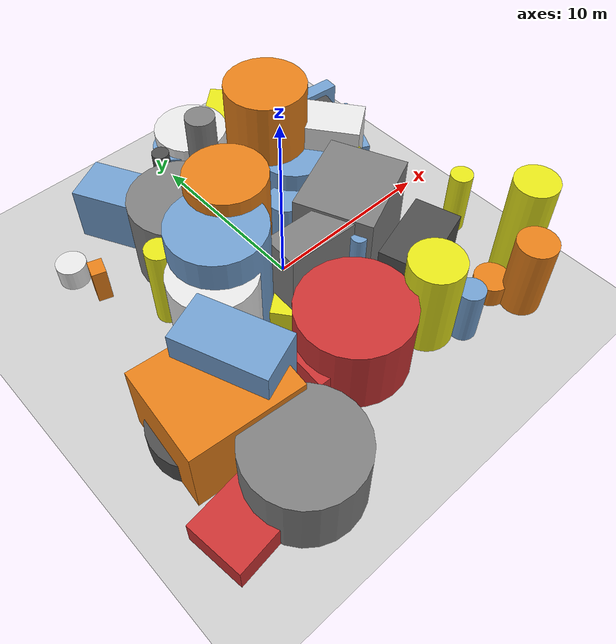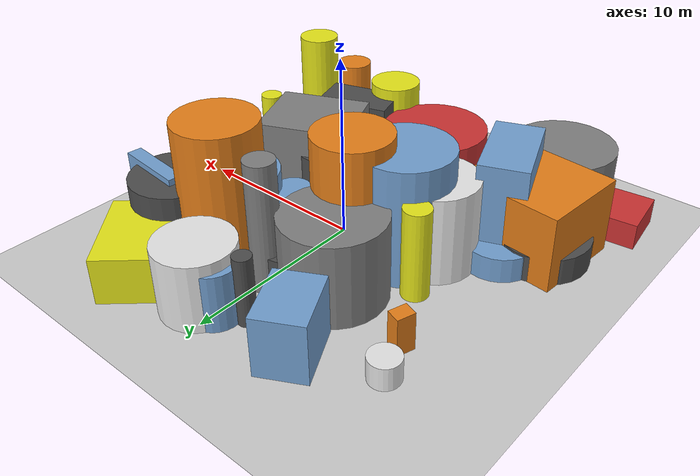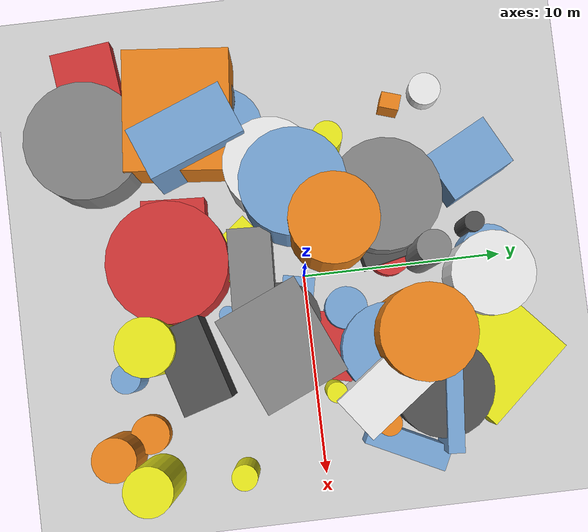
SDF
<?xml version='1.0'?>
<sdf version='1.6'>
  <world name='default'>
    <!-- Sun light -->
    <light name='sun' type='directional'>
      <cast_shadows>1</cast_shadows>
      <pose>0 0 10 0 0 0</pose>
      <diffuse>0.8 0.8 0.8 1</diffuse>
      <specular>0.2 0.2 0.2 1</specular>
      <attenuation>
        <range>1000</range>
        <constant>0.9</constant>
        <linear>0.01</linear>
        <quadratic>0.001</quadratic>
      </attenuation>
      <direction>-0.5 0.1 -0.9</direction>
    </light>

    <!-- Ground plane -->
    <model name='ground_plane'>
      <static>1</static>
      <link name='link'>
        <collision name='collision'>
          <geometry>
            <plane>
              <normal>0 0 1</normal>
              <size>100 100</size>
            </plane>
          </geometry>
          <surface>
            <contact>
              <collide_bitmask>65535</collide_bitmask>
              <ode/>
            </contact>
            <friction>
              <ode>
                <mu>100</mu>
                <mu2>50</mu2>
              </ode>
              <torsional><ode/></torsional>
            </friction>
            <bounce/>
          </surface>
          <max_contacts>10</max_contacts>
        </collision>
        <visual name='visual'>
          <cast_shadows>0</cast_shadows>
          <geometry>
            <plane>
              <normal>0 0 1</normal>
              <size>100 100</size>
            </plane>
          </geometry>
          <material>
            <script>
              <uri>file://media/materials/scripts/gazebo.material</uri>
              <n>Gazebo/Grey</n>
            </script>
          </material>
        </visual>
      </link>
    </model>

    <!-- Environment -->
    <magnetic_field>6e-06 2.3e-05 -4.2e-05</magnetic_field>
    <atmosphere type='adiabatic'/>
    <physics name='default_physics' default='0' type='ode'>
      <gravity>0 0 -9.8</gravity>
      <max_step_size>0.004</max_step_size>
      <real_time_factor>1</real_time_factor>
      <real_time_update_rate>250</real_time_update_rate>
    </physics>
    <scene>
      <ambient>0.4 0.4 0.4 1</ambient>
      <background>0.7 0.7 0.7 1</background>
      <shadows>1</shadows>
    </scene>
    <wind/>
    <spherical_coordinates>
      <surface_model>EARTH_WGS84</surface_model>
      <latitude_deg>0</latitude_deg>
      <longitude_deg>0</longitude_deg>
      <elevation>0</elevation>
      <heading_deg>0</heading_deg>
    </spherical_coordinates>

    <!-- ============ OBSTACLES (49) ============ -->
    <model name='obs_00'>
      <static>1</static>
      <link name='link'>
        <visual name='visual'>
          <geometry>
            <cylinder>
              <radius>0.9674</radius>
              <length>1.2553</length>
            </cylinder>
          </geometry>
          <material>
            <script>
              <n>Gazebo/Orange</n>
              <uri>file://media/materials/scripts/gazebo.material</uri>
            </script>
            <ambient>0.9 0.5 0.1 1</ambient>
          </material>
        </visual>
        <collision name='collision'>
          <geometry>
            <cylinder>
              <radius>0.9674</radius>
              <length>1.2553</length>
            </cylinder>
          </geometry>
          <max_contacts>10</max_contacts>
          <surface>
            <contact><ode/></contact>
            <bounce/>
            <friction>
              <ode><mu>1</mu><mu2>1</mu2></ode>
              <torsional><ode/></torsional>
            </friction>
          </surface>
        </collision>
      </link>
      <pose>7.0112 -8.4741 0.6277 0 0 0.6024</pose>
    </model>

    <model name='obs_01'>
      <static>1</static>
      <link name='link'>
        <visual name='visual'>
          <geometry>
            <cylinder>
              <radius>0.7028</radius>
              <length>1.4837</length>
            </cylinder>
          </geometry>
          <material>
            <script>
              <n>Gazebo/Yellow</n>
              <uri>file://media/materials/scripts/gazebo.material</uri>
            </script>
            <ambient>0.9 0.9 0.1 1</ambient>
          </material>
        </visual>
        <collision name='collision'>
          <geometry>
            <cylinder>
              <radius>0.7028</radius>
              <length>1.4837</length>
            </cylinder>
          </geometry>
          <max_contacts>10</max_contacts>
          <surface>
            <contact><ode/></contact>
            <bounce/>
            <friction>
              <ode><mu>1</mu><mu2>1</mu2></ode>
              <torsional><ode/></torsional>
            </friction>
          </surface>
        </collision>
      </link>
      <pose>-3.0285 3.0110 0.7419 0 0 3.1001</pose>
    </model>

    <model name='obs_02'>
      <static>1</static>
      <link name='link'>
        <visual name='visual'>
          <geometry>
            <cylinder>
              <radius>0.7253</radius>
              <length>4.9550</length>
            </cylinder>
          </geometry>
          <material>
            <script>
              <n>Gazebo/Yellow</n>
              <uri>file://media/materials/scripts/gazebo.material</uri>
            </script>
            <ambient>0.9 0.9 0.1 1</ambient>
          </material>
        </visual>
        <collision name='collision'>
          <geometry>
            <cylinder>
              <radius>0.7253</radius>
              <length>4.9550</length>
            </cylinder>
          </geometry>
          <max_contacts>10</max_contacts>
          <surface>
            <contact><ode/></contact>
            <bounce/>
            <friction>
              <ode><mu>1</mu><mu2>1</mu2></ode>
              <torsional><ode/></torsional>
            </friction>
          </surface>
        </collision>
      </link>
      <pose>-6.1950 1.7895 2.4775 0 0 0.3175</pose>
    </model>

    <model name='obs_03'>
      <static>1</static>
      <link name='link'>
        <visual name='visual'>
          <geometry>
            <cylinder>
              <radius>0.7131</radius>
              <length>1.6306</length>
            </cylinder>
          </geometry>
          <material>
            <script>
              <n>Gazebo/DarkGrey</n>
              <uri>file://media/materials/scripts/gazebo.material</uri>
            </script>
            <ambient>0.3 0.3 0.3 1</ambient>
          </material>
        </visual>
        <collision name='collision'>
          <geometry>
            <cylinder>
              <radius>0.7131</radius>
              <length>1.6306</length>
            </cylinder>
          </geometry>
          <max_contacts>10</max_contacts>
          <surface>
            <contact><ode/></contact>
            <bounce/>
            <friction>
              <ode><mu>1</mu><mu2>1</mu2></ode>
              <torsional><ode/></torsional>
            </friction>
          </surface>
        </collision>
      </link>
      <pose>-4.5865 2.9337 0.8153 0 0 2.9476</pose>
    </model>

    <model name='obs_04'>
      <static>1</static>
      <link name='link'>
        <visual name='visual'>
          <geometry>
            <cylinder>
              <radius>2.1077</radius>
              <length>7.3682</length>
            </cylinder>
          </geometry>
          <material>
            <script>
              <n>Gazebo/Orange</n>
              <uri>file://media/materials/scripts/gazebo.material</uri>
            </script>
            <ambient>0.9 0.5 0.1 1</ambient>
          </material>
        </visual>
        <collision name='collision'>
          <geometry>
            <cylinder>
              <radius>2.1077</radius>
              <length>7.3682</length>
            </cylinder>
          </geometry>
          <max_contacts>10</max_contacts>
          <surface>
            <contact><ode/></contact>
            <bounce/>
            <friction>
              <ode><mu>1</mu><mu2>1</mu2></ode>
              <torsional><ode/></torsional>
            </friction>
          </surface>
        </collision>
      </link>
      <pose>-2.0903 1.5663 3.6841 0 0 3.0534</pose>
    </model>

    <model name='obs_05'>
      <static>1</static>
      <link name='link'>
        <visual name='visual'>
          <geometry>
            <box>
              <size>5.4798 5.1498 2.5641</size>
            </box>
          </geometry>
          <material>
            <script>
              <n>Gazebo/Yellow</n>
              <uri>file://media/materials/scripts/gazebo.material</uri>
            </script>
            <ambient>0.9 0.9 0.1 1</ambient>
          </material>
        </visual>
        <collision name='collision'>
          <geometry>
            <box>
              <size>5.4798 5.1498 2.5641</size>
            </box>
          </geometry>
          <max_contacts>10</max_contacts>
          <surface>
            <contact><ode/></contact>
            <bounce/>
            <friction>
              <ode><mu>1</mu><mu2>1</mu2></ode>
              <torsional><ode/></torsional>
            </friction>
          </surface>
        </collision>
      </link>
      <pose>4.6281 8.5298 1.2821 0 0 0.7285</pose>
    </model>

    <model name='obs_06'>
      <static>1</static>
      <link name='link'>
        <visual name='visual'>
          <geometry>
            <box>
              <size>3.4422 2.5939 3.2309</size>
            </box>
          </geometry>
          <material>
            <script>
              <n>Gazebo/Blue</n>
              <uri>file://media/materials/scripts/gazebo.material</uri>
            </script>
            <ambient>0.447 0.624 0.812 1</ambient>
          </material>
        </visual>
        <collision name='collision'>
          <geometry>
            <box>
              <size>3.4422 2.5939 3.2309</size>
            </box>
          </geometry>
          <max_contacts>10</max_contacts>
          <surface>
            <contact><ode/></contact>
            <bounce/>
            <friction>
              <ode><mu>1</mu><mu2>1</mu2></ode>
              <torsional><ode/></torsional>
            </friction>
          </surface>
        </collision>
      </link>
      <pose>-4.5895 8.5874 1.6154 0 0 2.0553</pose>
    </model>

    <model name='obs_07'>
      <static>1</static>
      <link name='link'>
        <visual name='visual'>
          <geometry>
            <box>
              <size>1.8927 0.7766 4.0452</size>
            </box>
          </geometry>
          <material>
            <script>
              <n>Gazebo/Blue</n>
              <uri>file://media/materials/scripts/gazebo.material</uri>
            </script>
            <ambient>0.447 0.624 0.812 1</ambient>
          </material>
        </visual>
        <collision name='collision'>
          <geometry>
            <box>
              <size>1.8927 0.7766 4.0452</size>
            </box>
          </geometry>
          <max_contacts>10</max_contacts>
          <surface>
            <contact><ode/></contact>
            <bounce/>
            <friction>
              <ode><mu>1</mu><mu2>1</mu2></ode>
              <torsional><ode/></torsional>
            </friction>
          </surface>
        </collision>
      </link>
      <pose>-3.6639 1.3154 2.0226 0 0 0.6237</pose>
    </model>

    <model name='obs_08'>
      <static>1</static>
      <link name='link'>
        <visual name='visual'>
          <geometry>
            <cylinder>
              <radius>2.5033</radius>
              <length>6.5667</length>
            </cylinder>
          </geometry>
          <material>
            <script>
              <n>Gazebo/Blue</n>
              <uri>file://media/materials/scripts/gazebo.material</uri>
            </script>
            <ambient>0.447 0.624 0.812 1</ambient>
          </material>
        </visual>
        <collision name='collision'>
          <geometry>
            <cylinder>
              <radius>2.5033</radius>
              <length>6.5667</length>
            </cylinder>
          </geometry>
          <max_contacts>10</max_contacts>
          <surface>
            <contact><ode/></contact>
            <bounce/>
            <friction>
              <ode><mu>1</mu><mu2>1</mu2></ode>
              <torsional><ode/></torsional>
            </friction>
          </surface>
        </collision>
      </link>
      <pose>-4.0509 -0.1011 3.2834 0 0 1.0841</pose>
    </model>

    <model name='obs_09'>
      <static>1</static>
      <link name='link'>
        <visual name='visual'>
          <geometry>
            <box>
              <size>4.1665 2.4441 4.7084</size>
            </box>
          </geometry>
          <material>
            <script>
              <n>Gazebo/DarkGrey</n>
              <uri>file://media/materials/scripts/gazebo.material</uri>
            </script>
            <ambient>0.3 0.3 0.3 1</ambient>
          </material>
        </visual>
        <collision name='collision'>
          <geometry>
            <box>
              <size>4.1665 2.4441 4.7084</size>
            </box>
          </geometry>
          <max_contacts>10</max_contacts>
          <surface>
            <contact><ode/></contact>
            <bounce/>
            <friction>
              <ode><mu>1</mu><mu2>1</mu2></ode>
              <torsional><ode/></torsional>
            </friction>
          </surface>
        </collision>
      </link>
      <pose>3.8448 -5.7954 2.3542 0 0 0.2942</pose>
    </model>

    <model name='obs_10'>
      <static>1</static>
      <link name='link'>
        <visual name='visual'>
          <geometry>
            <cylinder>
              <radius>0.8164</radius>
              <length>1.2535</length>
            </cylinder>
          </geometry>
          <material>
            <script>
              <n>Gazebo/White</n>
              <uri>file://media/materials/scripts/gazebo.material</uri>
            </script>
            <ambient>0.9 0.9 0.9 1</ambient>
          </material>
        </visual>
        <collision name='collision'>
          <geometry>
            <cylinder>
              <radius>0.8164</radius>
              <length>1.2535</length>
            </cylinder>
          </geometry>
          <max_contacts>10</max_contacts>
          <surface>
            <contact><ode/></contact>
            <bounce/>
            <friction>
              <ode><mu>1</mu><mu2>1</mu2></ode>
              <torsional><ode/></torsional>
            </friction>
          </surface>
        </collision>
      </link>
      <pose>-8.6317 7.0988 0.6268 0 0 1.6602</pose>
    </model>

    <model name='obs_11'>
      <static>1</static>
      <link name='link'>
        <visual name='visual'>
          <geometry>
            <cylinder>
              <radius>2.4528</radius>
              <length>1.4789</length>
            </cylinder>
          </geometry>
          <material>
            <script>
              <n>Gazebo/DarkGrey</n>
              <uri>file://media/materials/scripts/gazebo.material</uri>
            </script>
            <ambient>0.3 0.3 0.3 1</ambient>
          </material>
        </visual>
        <collision name='collision'>
          <geometry>
            <cylinder>
              <radius>2.4528</radius>
              <length>1.4789</length>
            </cylinder>
          </geometry>
          <max_contacts>10</max_contacts>
          <surface>
            <contact><ode/></contact>
            <bounce/>
            <friction>
              <ode><mu>1</mu><mu2>1</mu2></ode>
              <torsional><ode/></torsional>
            </friction>
          </surface>
        </collision>
      </link>
      <pose>-9.3785 -4.8683 0.7395 0 0 1.1679</pose>
    </model>

    <model name='obs_12'>
      <static>1</static>
      <link name='link'>
        <visual name='visual'>
          <geometry>
            <box>
              <size>4.1057 1.2197 2.4802</size>
            </box>
          </geometry>
          <material>
            <script>
              <n>Gazebo/Blue</n>
              <uri>file://media/materials/scripts/gazebo.material</uri>
            </script>
            <ambient>0.447 0.624 0.812 1</ambient>
          </material>
        </visual>
        <collision name='collision'>
          <geometry>
            <box>
              <size>4.1057 1.2197 2.4802</size>
            </box>
          </geometry>
          <max_contacts>10</max_contacts>
          <surface>
            <contact><ode/></contact>
            <bounce/>
            <friction>
              <ode><mu>1</mu><mu2>1</mu2></ode>
              <torsional><ode/></torsional>
            </friction>
          </surface>
        </collision>
      </link>
      <pose>8.8752 4.0924 1.2401 0 0 1.1194</pose>
    </model>

    <model name='obs_13'>
      <static>1</static>
      <link name='link'>
        <visual name='visual'>
          <geometry>
            <cylinder>
              <radius>0.4924</radius>
              <length>4.4950</length>
            </cylinder>
          </geometry>
          <material>
            <script>
              <n>Gazebo/Yellow</n>
              <uri>file://media/materials/scripts/gazebo.material</uri>
            </script>
            <ambient>0.9 0.9 0.1 1</ambient>
          </material>
        </visual>
        <collision name='collision'>
          <geometry>
            <cylinder>
              <radius>0.4924</radius>
              <length>4.4950</length>
            </cylinder>
          </geometry>
          <max_contacts>10</max_contacts>
          <surface>
            <contact><ode/></contact>
            <bounce/>
            <friction>
              <ode><mu>1</mu><mu2>1</mu2></ode>
              <torsional><ode/></torsional>
            </friction>
          </surface>
        </collision>
      </link>
      <pose>5.8511 0.8782 2.2475 0 0 0.2785</pose>
    </model>

    <model name='obs_14'>
      <static>1</static>
      <link name='link'>
        <visual name='visual'>
          <geometry>
            <cylinder>
              <radius>0.6289</radius>
              <length>3.8346</length>
            </cylinder>
          </geometry>
          <material>
            <script>
              <n>Gazebo/Yellow</n>
              <uri>file://media/materials/scripts/gazebo.material</uri>
            </script>
            <ambient>0.9 0.9 0.1 1</ambient>
          </material>
        </visual>
        <collision name='collision'>
          <geometry>
            <cylinder>
              <radius>0.6289</radius>
              <length>3.8346</length>
            </cylinder>
          </geometry>
          <max_contacts>10</max_contacts>
          <surface>
            <contact><ode/></contact>
            <bounce/>
            <friction>
              <ode><mu>1</mu><mu2>1</mu2></ode>
              <torsional><ode/></torsional>
            </friction>
          </surface>
        </collision>
      </link>
      <pose>9.3806 -3.9309 1.9173 0 0 2.5628</pose>
    </model>

    <model name='obs_15'>
      <static>1</static>
      <link name='link'>
        <visual name='visual'>
          <geometry>
            <box>
              <size>2.6079 4.8768 5.7164</size>
            </box>
          </geometry>
          <material>
            <script>
              <n>Gazebo/Blue</n>
              <uri>file://media/materials/scripts/gazebo.material</uri>
            </script>
            <ambient>0.447 0.624 0.812 1</ambient>
          </material>
        </visual>
        <collision name='collision'>
          <geometry>
            <box>
              <size>2.6079 4.8768 5.7164</size>
            </box>
          </geometry>
          <max_contacts>10</max_contacts>
          <surface>
            <contact><ode/></contact>
            <bounce/>
            <friction>
              <ode><mu>1</mu><mu2>1</mu2></ode>
              <torsional><ode/></torsional>
            </friction>
          </surface>
        </collision>
      </link>
      <pose>-7.0875 -4.8121 2.8582 0 0 0.3750</pose>
    </model>

    <model name='obs_16'>
      <static>1</static>
      <link name='link'>
        <visual name='visual'>
          <geometry>
            <cylinder>
              <radius>0.4864</radius>
              <length>3.7621</length>
            </cylinder>
          </geometry>
          <material>
            <script>
              <n>Gazebo/DarkGrey</n>
              <uri>file://media/materials/scripts/gazebo.material</uri>
            </script>
            <ambient>0.3 0.3 0.3 1</ambient>
          </material>
        </visual>
        <collision name='collision'>
          <geometry>
            <cylinder>
              <radius>0.4864</radius>
              <length>3.7621</length>
            </cylinder>
          </geometry>
          <max_contacts>10</max_contacts>
          <surface>
            <contact><ode/></contact>
            <bounce/>
            <friction>
              <ode><mu>1</mu><mu2>1</mu2></ode>
              <torsional><ode/></torsional>
            </friction>
          </surface>
        </collision>
      </link>
      <pose>-1.4889 8.3887 1.8811 0 0 0.1455</pose>
    </model>

    <model name='obs_17'>
      <static>1</static>
      <link name='link'>
        <visual name='visual'>
          <geometry>
            <cylinder>
              <radius>0.4150</radius>
              <length>4.5559</length>
            </cylinder>
          </geometry>
          <material>
            <script>
              <n>Gazebo/Blue</n>
              <uri>file://media/materials/scripts/gazebo.material</uri>
            </script>
            <ambient>0.447 0.624 0.812 1</ambient>
          </material>
        </visual>
        <collision name='collision'>
          <geometry>
            <cylinder>
              <radius>0.4150</radius>
              <length>4.5559</length>
            </cylinder>
          </geometry>
          <max_contacts>10</max_contacts>
          <surface>
            <contact><ode/></contact>
            <bounce/>
            <friction>
              <ode><mu>1</mu><mu2>1</mu2></ode>
              <torsional><ode/></torsional>
            </friction>
          </surface>
        </collision>
      </link>
      <pose>1.6386 -3.8174 2.2780 0 0 1.0649</pose>
    </model>

    <model name='obs_18'>
      <static>1</static>
      <link name='link'>
        <visual name='visual'>
          <geometry>
            <cylinder>
              <radius>2.3880</radius>
              <length>3.8653</length>
            </cylinder>
          </geometry>
          <material>
            <script>
              <n>Gazebo/DarkGrey</n>
              <uri>file://media/materials/scripts/gazebo.material</uri>
            </script>
            <ambient>0.3 0.3 0.3 1</ambient>
          </material>
        </visual>
        <collision name='collision'>
          <geometry>
            <cylinder>
              <radius>2.3880</radius>
              <length>3.8653</length>
            </cylinder>
          </geometry>
          <max_contacts>10</max_contacts>
          <surface>
            <contact><ode/></contact>
            <bounce/>
            <friction>
              <ode><mu>1</mu><mu2>1</mu2></ode>
              <torsional><ode/></torsional>
            </friction>
          </surface>
        </collision>
      </link>
      <pose>6.2465 5.9988 1.9327 0 0 0.3663</pose>
    </model>

    <model name='obs_19'>
      <static>1</static>
      <link name='link'>
        <visual name='visual'>
          <geometry>
            <box>
              <size>5.1503 5.8872 4.2134</size>
            </box>
          </geometry>
          <material>
            <script>
              <n>Gazebo/Orange</n>
              <uri>file://media/materials/scripts/gazebo.material</uri>
            </script>
            <ambient>0.9 0.5 0.1 1</ambient>
          </material>
        </visual>
        <collision name='collision'>
          <geometry>
            <box>
              <size>5.1503 5.8872 4.2134</size>
            </box>
          </geometry>
          <max_contacts>10</max_contacts>
          <surface>
            <contact><ode/></contact>
            <bounce/>
            <friction>
              <ode><mu>1</mu><mu2>1</mu2></ode>
              <torsional><ode/></torsional>
            </friction>
          </surface>
        </collision>
      </link>
      <pose>-8.4223 -5.2189 2.1067 0 0 1.4791</pose>
    </model>

    <model name='obs_20'>
      <static>1</static>
      <link name='link'>
        <visual name='visual'>
          <geometry>
            <box>
              <size>2.0418 5.0535 5.2664</size>
            </box>
          </geometry>
          <material>
            <script>
              <n>Gazebo/Grey</n>
              <uri>file://media/materials/scripts/gazebo.material</uri>
            </script>
            <ambient>0.5 0.5 0.5 1</ambient>
          </material>
        </visual>
        <collision name='collision'>
          <geometry>
            <box>
              <size>2.0418 5.0535 5.2664</size>
            </box>
          </geometry>
          <max_contacts>10</max_contacts>
          <surface>
            <contact><ode/></contact>
            <bounce/>
            <friction>
              <ode><mu>1</mu><mu2>1</mu2></ode>
              <torsional><ode/></torsional>
            </friction>
          </surface>
        </collision>
      </link>
      <pose>0.2467 -2.4942 2.6332 0 0 1.5300</pose>
    </model>

    <model name='obs_21'>
      <static>1</static>
      <link name='link'>
        <visual name='visual'>
          <geometry>
            <box>
              <size>3.4318 3.4667 2.1046</size>
            </box>
          </geometry>
          <material>
            <script>
              <n>Gazebo/DarkGrey</n>
              <uri>file://media/materials/scripts/gazebo.material</uri>
            </script>
            <ambient>0.3 0.3 0.3 1</ambient>
          </material>
        </visual>
        <collision name='collision'>
          <geometry>
            <box>
              <size>3.4318 3.4667 2.1046</size>
            </box>
          </geometry>
          <max_contacts>10</max_contacts>
          <surface>
            <contact><ode/></contact>
            <bounce/>
            <friction>
              <ode><mu>1</mu><mu2>1</mu2></ode>
              <torsional><ode/></torsional>
            </friction>
          </surface>
        </collision>
      </link>
      <pose>-1.9416 4.3851 1.0523 0 0 1.7946</pose>
    </model>

    <model name='obs_22'>
      <static>1</static>
      <link name='link'>
        <visual name='visual'>
          <geometry>
            <cylinder>
              <radius>1.0350</radius>
              <length>2.8127</length>
            </cylinder>
          </geometry>
          <material>
            <script>
              <n>Gazebo/Blue</n>
              <uri>file://media/materials/scripts/gazebo.material</uri>
            </script>
            <ambient>0.447 0.624 0.812 1</ambient>
          </material>
        </visual>
        <collision name='collision'>
          <geometry>
            <cylinder>
              <radius>1.0350</radius>
              <length>2.8127</length>
            </cylinder>
          </geometry>
          <max_contacts>10</max_contacts>
          <surface>
            <contact><ode/></contact>
            <bounce/>
            <friction>
              <ode><mu>1</mu><mu2>1</mu2></ode>
              <torsional><ode/></torsional>
            </friction>
          </surface>
        </collision>
      </link>
      <pose>1.8976 1.8398 1.4063 0 0 0.1996</pose>
    </model>

    <model name='obs_23'>
      <static>1</static>
      <link name='link'>
        <visual name='visual'>
          <geometry>
            <box>
              <size>1.8680 5.2755 1.6965</size>
            </box>
          </geometry>
          <material>
            <script>
              <n>Gazebo/Yellow</n>
              <uri>file://media/materials/scripts/gazebo.material</uri>
            </script>
            <ambient>0.9 0.9 0.1 1</ambient>
          </material>
        </visual>
        <collision name='collision'>
          <geometry>
            <box>
              <size>1.8680 5.2755 1.6965</size>
            </box>
          </geometry>
          <max_contacts>10</max_contacts>
          <surface>
            <contact><ode/></contact>
            <bounce/>
            <friction>
              <ode><mu>1</mu><mu2>1</mu2></ode>
              <torsional><ode/></torsional>
            </friction>
          </surface>
        </collision>
      </link>
      <pose>-0.9062 -4.2085 0.8482 0 0 0.6598</pose>
    </model>

    <model name='obs_24'>
      <static>1</static>
      <link name='link'>
        <visual name='visual'>
          <geometry>
            <cylinder>
              <radius>2.2382</radius>
              <length>4.9040</length>
            </cylinder>
          </geometry>
          <material>
            <script>
              <n>Gazebo/White</n>
              <uri>file://media/materials/scripts/gazebo.material</uri>
            </script>
            <ambient>0.9 0.9 0.9 1</ambient>
          </material>
        </visual>
        <collision name='collision'>
          <geometry>
            <cylinder>
              <radius>2.2382</radius>
              <length>4.9040</length>
            </cylinder>
          </geometry>
          <max_contacts>10</max_contacts>
          <surface>
            <contact><ode/></contact>
            <bounce/>
            <friction>
              <ode><mu>1</mu><mu2>1</mu2></ode>
              <torsional><ode/></torsional>
            </friction>
          </surface>
        </collision>
      </link>
      <pose>-5.2195 -1.0628 2.4520 0 0 3.1292</pose>
    </model>

    <model name='obs_25'>
      <static>1</static>
      <link name='link'>
        <visual name='visual'>
          <geometry>
            <cylinder>
              <radius>1.1734</radius>
              <length>6.4293</length>
            </cylinder>
          </geometry>
          <material>
            <script>
              <n>Gazebo/Yellow</n>
              <uri>file://media/materials/scripts/gazebo.material</uri>
            </script>
            <ambient>0.9 0.9 0.1 1</ambient>
          </material>
        </visual>
        <collision name='collision'>
          <geometry>
            <cylinder>
              <radius>1.1734</radius>
              <length>6.4293</length>
            </cylinder>
          </geometry>
          <max_contacts>10</max_contacts>
          <surface>
            <contact><ode/></contact>
            <bounce/>
            <friction>
              <ode><mu>1</mu><mu2>1</mu2></ode>
              <torsional><ode/></torsional>
            </friction>
          </surface>
        </collision>
      </link>
      <pose>9.2571 -8.2021 3.2146 0 0 2.9095</pose>
    </model>

    <model name='obs_26'>
      <static>1</static>
      <link name='link'>
        <visual name='visual'>
          <geometry>
            <cylinder>
              <radius>2.2431</radius>
              <length>3.8948</length>
            </cylinder>
          </geometry>
          <material>
            <script>
              <n>Gazebo/Blue</n>
              <uri>file://media/materials/scripts/gazebo.material</uri>
            </script>
            <ambient>0.447 0.624 0.812 1</ambient>
          </material>
        </visual>
        <collision name='collision'>
          <geometry>
            <cylinder>
              <radius>2.2431</radius>
              <length>3.8948</length>
            </cylinder>
          </geometry>
          <max_contacts>10</max_contacts>
          <surface>
            <contact><ode/></contact>
            <bounce/>
            <friction>
              <ode><mu>1</mu><mu2>1</mu2></ode>
              <torsional><ode/></torsional>
            </friction>
          </surface>
        </collision>
      </link>
      <pose>4.0928 3.5854 1.9474 0 0 0.9096</pose>
    </model>

    <model name='obs_27'>
      <static>1</static>
      <link name='link'>
        <visual name='visual'>
          <geometry>
            <box>
              <size>3.1606 2.4338 2.1835</size>
            </box>
          </geometry>
          <material>
            <script>
              <n>Gazebo/Red</n>
              <uri>file://media/materials/scripts/gazebo.material</uri>
            </script>
            <ambient>0.8 0.2 0.2 1</ambient>
          </material>
        </visual>
        <collision name='collision'>
          <geometry>
            <box>
              <size>3.1606 2.4338 2.1835</size>
            </box>
          </geometry>
          <max_contacts>10</max_contacts>
          <surface>
            <contact><ode/></contact>
            <bounce/>
            <friction>
              <ode><mu>1</mu><mu2>1</mu2></ode>
              <torsional><ode/></torsional>
            </friction>
          </surface>
        </collision>
      </link>
      <pose>-3.1928 -6.1085 1.0917 0 0 1.5197</pose>
    </model>

    <model name='obs_28'>
      <static>1</static>
      <link name='link'>
        <visual name='visual'>
          <geometry>
            <box>
              <size>0.9837 0.7739 2.0835</size>
            </box>
          </geometry>
          <material>
            <script>
              <n>Gazebo/Orange</n>
              <uri>file://media/materials/scripts/gazebo.material</uri>
            </script>
            <ambient>0.9 0.5 0.1 1</ambient>
          </material>
        </visual>
        <collision name='collision'>
          <geometry>
            <box>
              <size>0.9837 0.7739 2.0835</size>
            </box>
          </geometry>
          <max_contacts>10</max_contacts>
          <surface>
            <contact><ode/></contact>
            <bounce/>
            <friction>
              <ode><mu>1</mu><mu2>1</mu2></ode>
              <torsional><ode/></torsional>
            </friction>
          </surface>
        </collision>
      </link>
      <pose>-8.0593 5.2263 1.0417 0 0 1.2631</pose>
    </model>

    <model name='obs_29'>
      <static>1</static>
      <link name='link'>
        <visual name='visual'>
          <geometry>
            <cylinder>
              <radius>1.3353</radius>
              <length>3.1214</length>
            </cylinder>
          </geometry>
          <material>
            <script>
              <n>Gazebo/Blue</n>
              <uri>file://media/materials/scripts/gazebo.material</uri>
            </script>
            <ambient>0.447 0.624 0.812 1</ambient>
          </material>
        </visual>
        <collision name='collision'>
          <geometry>
            <cylinder>
              <radius>1.3353</radius>
              <length>3.1214</length>
            </cylinder>
          </geometry>
          <max_contacts>10</max_contacts>
          <surface>
            <contact><ode/></contact>
            <bounce/>
            <friction>
              <ode><mu>1</mu><mu2>1</mu2></ode>
              <torsional><ode/></torsional>
            </friction>
          </surface>
        </collision>
      </link>
      <pose>-0.0110 8.9949 1.5607 0 0 0.7246</pose>
    </model>

    <model name='obs_30'>
      <static>1</static>
      <link name='link'>
        <visual name='visual'>
          <geometry>
            <box>
              <size>3.9544 0.7978 4.2142</size>
            </box>
          </geometry>
          <material>
            <script>
              <n>Gazebo/Blue</n>
              <uri>file://media/materials/scripts/gazebo.material</uri>
            </script>
            <ambient>0.447 0.624 0.812 1</ambient>
          </material>
        </visual>
        <collision name='collision'>
          <geometry>
            <box>
              <size>3.9544 0.7978 4.2142</size>
            </box>
          </geometry>
          <max_contacts>10</max_contacts>
          <surface>
            <contact><ode/></contact>
            <bounce/>
            <friction>
              <ode><mu>1</mu><mu2>1</mu2></ode>
              <torsional><ode/></torsional>
            </friction>
          </surface>
        </collision>
      </link>
      <pose>7.3818 6.3291 2.1071 0 0 3.0479</pose>
    </model>

    <model name='obs_31'>
      <static>1</static>
      <link name='link'>
        <visual name='visual'>
          <geometry>
            <cylinder>
              <radius>1.7573</radius>
              <length>3.8804</length>
            </cylinder>
          </geometry>
          <material>
            <script>
              <n>Gazebo/DarkGrey</n>
              <uri>file://media/materials/scripts/gazebo.material</uri>
            </script>
            <ambient>0.3 0.3 0.3 1</ambient>
          </material>
        </visual>
        <collision name='collision'>
          <geometry>
            <cylinder>
              <radius>1.7573</radius>
              <length>3.8804</length>
            </cylinder>
          </geometry>
          <max_contacts>10</max_contacts>
          <surface>
            <contact><ode/></contact>
            <bounce/>
            <friction>
              <ode><mu>1</mu><mu2>1</mu2></ode>
              <torsional><ode/></torsional>
            </friction>
          </surface>
        </collision>
      </link>
      <pose>2.1118 -1.2120 1.9402 0 0 1.6971</pose>
    </model>

    <model name='obs_32'>
      <static>1</static>
      <link name='link'>
        <visual name='visual'>
          <geometry>
            <box>
              <size>1.5881 2.5078 1.8961</size>
            </box>
          </geometry>
          <material>
            <script>
              <n>Gazebo/Blue</n>
              <uri>file://media/materials/scripts/gazebo.material</uri>
            </script>
            <ambient>0.447 0.624 0.812 1</ambient>
          </material>
        </visual>
        <collision name='collision'>
          <geometry>
            <box>
              <size>1.5881 2.5078 1.8961</size>
            </box>
          </geometry>
          <max_contacts>10</max_contacts>
          <surface>
            <contact><ode/></contact>
            <bounce/>
            <friction>
              <ode><mu>1</mu><mu2>1</mu2></ode>
              <torsional><ode/></torsional>
            </friction>
          </surface>
        </collision>
      </link>
      <pose>1.3054 -0.5127 0.9481 0 0 1.3654</pose>
    </model>

    <model name='obs_33'>
      <static>1</static>
      <link name='link'>
        <visual name='visual'>
          <geometry>
            <cylinder>
              <radius>2.2335</radius>
              <length>7.6762</length>
            </cylinder>
          </geometry>
          <material>
            <script>
              <n>Gazebo/Orange</n>
              <uri>file://media/materials/scripts/gazebo.material</uri>
            </script>
            <ambient>0.9 0.5 0.1 1</ambient>
          </material>
        </visual>
        <collision name='collision'>
          <geometry>
            <cylinder>
              <radius>2.2335</radius>
              <length>7.6762</length>
            </cylinder>
          </geometry>
          <max_contacts>10</max_contacts>
          <surface>
            <contact><ode/></contact>
            <bounce/>
            <friction>
              <ode><mu>1</mu><mu2>1</mu2></ode>
              <torsional><ode/></torsional>
            </friction>
          </surface>
        </collision>
      </link>
      <pose>3.5050 5.1712 3.8381 0 0 1.7157</pose>
    </model>

    <model name='obs_34'>
      <static>1</static>
      <link name='link'>
        <visual name='visual'>
          <geometry>
            <box>
              <size>2.4349 5.2297 5.3553</size>
            </box>
          </geometry>
          <material>
            <script>
              <n>Gazebo/White</n>
              <uri>file://media/materials/scripts/gazebo.material</uri>
            </script>
            <ambient>0.9 0.9 0.9 1</ambient>
          </material>
        </visual>
        <collision name='collision'>
          <geometry>
            <box>
              <size>2.4349 5.2297 5.3553</size>
            </box>
          </geometry>
          <max_contacts>10</max_contacts>
          <surface>
            <contact><ode/></contact>
            <bounce/>
            <friction>
              <ode><mu>1</mu><mu2>1</mu2></ode>
              <torsional><ode/></torsional>
            </friction>
          </surface>
        </collision>
      </link>
      <pose>5.6540 3.6207 2.6777 0 0 0.6404</pose>
    </model>

    <model name='obs_35'>
      <static>1</static>
      <link name='link'>
        <visual name='visual'>
          <geometry>
            <cylinder>
              <radius>2.0116</radius>
              <length>1.3711</length>
            </cylinder>
          </geometry>
          <material>
            <script>
              <n>Gazebo/Blue</n>
              <uri>file://media/materials/scripts/gazebo.material</uri>
            </script>
            <ambient>0.447 0.624 0.812 1</ambient>
          </material>
        </visual>
        <collision name='collision'>
          <geometry>
            <cylinder>
              <radius>2.0116</radius>
              <length>1.3711</length>
            </cylinder>
          </geometry>
          <max_contacts>10</max_contacts>
          <surface>
            <contact><ode/></contact>
            <bounce/>
            <friction>
              <ode><mu>1</mu><mu2>1</mu2></ode>
              <torsional><ode/></torsional>
            </friction>
          </surface>
        </collision>
      </link>
      <pose>-7.7984 -3.2089 0.6855 0 0 1.9160</pose>
    </model>

    <model name='obs_36'>
      <static>1</static>
      <link name='link'>
        <visual name='visual'>
          <geometry>
            <box>
              <size>3.0560 5.9279 1.4583</size>
            </box>
          </geometry>
          <material>
            <script>
              <n>Gazebo/Red</n>
              <uri>file://media/materials/scripts/gazebo.material</uri>
            </script>
            <ambient>0.8 0.2 0.2 1</ambient>
          </material>
        </visual>
        <collision name='collision'>
          <geometry>
            <box>
              <size>3.0560 5.9279 1.4583</size>
            </box>
          </geometry>
          <max_contacts>10</max_contacts>
          <surface>
            <contact><ode/></contact>
            <bounce/>
            <friction>
              <ode><mu>1</mu><mu2>1</mu2></ode>
              <torsional><ode/></torsional>
            </friction>
          </surface>
        </collision>
      </link>
      <pose>-9.6609 -9.5704 0.7291 0 0 1.6912</pose>
    </model>

    <model name='obs_37'>
      <static>1</static>
      <link name='link'>
        <visual name='visual'>
          <geometry>
            <cylinder>
              <radius>2.9546</radius>
              <length>4.1160</length>
            </cylinder>
          </geometry>
          <material>
            <script>
              <n>Gazebo/Red</n>
              <uri>file://media/materials/scripts/gazebo.material</uri>
            </script>
            <ambient>0.8 0.2 0.2 1</ambient>
          </material>
        </visual>
        <collision name='collision'>
          <geometry>
            <cylinder>
              <radius>2.9546</radius>
              <length>4.1160</length>
            </cylinder>
          </geometry>
          <max_contacts>10</max_contacts>
          <surface>
            <contact><ode/></contact>
            <bounce/>
            <friction>
              <ode><mu>1</mu><mu2>1</mu2></ode>
              <torsional><ode/></torsional>
            </friction>
          </surface>
        </collision>
      </link>
      <pose>-1.1937 -6.4576 2.0580 0 0 3.0943</pose>
    </model>

    <model name='obs_38'>
      <static>1</static>
      <link name='link'>
        <visual name='visual'>
          <geometry>
            <cylinder>
              <radius>0.6140</radius>
              <length>2.6769</length>
            </cylinder>
          </geometry>
          <material>
            <script>
              <n>Gazebo/Orange</n>
              <uri>file://media/materials/scripts/gazebo.material</uri>
            </script>
            <ambient>0.9 0.5 0.1 1</ambient>
          </material>
        </visual>
        <collision name='collision'>
          <geometry>
            <cylinder>
              <radius>0.6140</radius>
              <length>2.6769</length>
            </cylinder>
          </geometry>
          <max_contacts>10</max_contacts>
          <surface>
            <contact><ode/></contact>
            <bounce/>
            <friction>
              <ode><mu>1</mu><mu2>1</mu2></ode>
              <torsional><ode/></torsional>
            </friction>
          </surface>
        </collision>
      </link>
      <pose>7.7097 3.2912 1.3384 0 0 0.2202</pose>
    </model>

    <model name='obs_39'>
      <static>1</static>
      <link name='link'>
        <visual name='visual'>
          <geometry>
            <cylinder>
              <radius>1.4269</radius>
              <length>5.3435</length>
            </cylinder>
          </geometry>
          <material>
            <script>
              <n>Gazebo/Yellow</n>
              <uri>file://media/materials/scripts/gazebo.material</uri>
            </script>
            <ambient>0.9 0.9 0.1 1</ambient>
          </material>
        </visual>
        <collision name='collision'>
          <geometry>
            <cylinder>
              <radius>1.4269</radius>
              <length>5.3435</length>
            </cylinder>
          </geometry>
          <max_contacts>10</max_contacts>
          <surface>
            <contact><ode/></contact>
            <bounce/>
            <friction>
              <ode><mu>1</mu><mu2>1</mu2></ode>
              <torsional><ode/></torsional>
            </friction>
          </surface>
        </collision>
      </link>
      <pose>2.7184 -7.7901 2.6717 0 0 1.8463</pose>
    </model>

    <model name='obs_40'>
      <static>1</static>
      <link name='link'>
        <visual name='visual'>
          <geometry>
            <cylinder>
              <radius>2.8741</radius>
              <length>3.8223</length>
            </cylinder>
          </geometry>
          <material>
            <script>
              <n>Gazebo/Grey</n>
              <uri>file://media/materials/scripts/gazebo.material</uri>
            </script>
            <ambient>0.5 0.5 0.5 1</ambient>
          </material>
        </visual>
        <collision name='collision'>
          <geometry>
            <cylinder>
              <radius>2.8741</radius>
              <length>3.8223</length>
            </cylinder>
          </geometry>
          <max_contacts>10</max_contacts>
          <surface>
            <contact><ode/></contact>
            <bounce/>
            <friction>
              <ode><mu>1</mu><mu2>1</mu2></ode>
              <torsional><ode/></torsional>
            </friction>
          </surface>
        </collision>
      </link>
      <pose>-7.5044 -9.8732 1.9111 0 0 1.0428</pose>
    </model>

    <model name='obs_41'>
      <static>1</static>
      <link name='link'>
        <visual name='visual'>
          <geometry>
            <cylinder>
              <radius>1.0843</radius>
              <length>1.2881</length>
            </cylinder>
          </geometry>
          <material>
            <script>
              <n>Gazebo/Red</n>
              <uri>file://media/materials/scripts/gazebo.material</uri>
            </script>
            <ambient>0.8 0.2 0.2 1</ambient>
          </material>
        </visual>
        <collision name='collision'>
          <geometry>
            <cylinder>
              <radius>1.0843</radius>
              <length>1.2881</length>
            </cylinder>
          </geometry>
          <max_contacts>10</max_contacts>
          <surface>
            <contact><ode/></contact>
            <bounce/>
            <friction>
              <ode><mu>1</mu><mu2>1</mu2></ode>
              <torsional><ode/></torsional>
            </friction>
          </surface>
        </collision>
      </link>
      <pose>-0.5687 4.3759 0.6440 0 0 0.8820</pose>
    </model>

    <model name='obs_42'>
      <static>1</static>
      <link name='link'>
        <visual name='visual'>
          <geometry>
            <box>
              <size>3.9141 3.3029 1.1639</size>
            </box>
          </geometry>
          <material>
            <script>
              <n>Gazebo/Red</n>
              <uri>file://media/materials/scripts/gazebo.material</uri>
            </script>
            <ambient>0.8 0.2 0.2 1</ambient>
          </material>
        </visual>
        <collision name='collision'>
          <geometry>
            <box>
              <size>3.9141 3.3029 1.1639</size>
            </box>
          </geometry>
          <max_contacts>10</max_contacts>
          <surface>
            <contact><ode/></contact>
            <bounce/>
            <friction>
              <ode><mu>1</mu><mu2>1</mu2></ode>
              <torsional><ode/></torsional>
            </friction>
          </surface>
        </collision>
      </link>
      <pose>3.5311 0.4264 0.5819 0 0 1.3323</pose>
    </model>

    <model name='obs_43'>
      <static>1</static>
      <link name='link'>
        <visual name='visual'>
          <geometry>
            <cylinder>
              <radius>2.7056</radius>
              <length>4.5761</length>
            </cylinder>
          </geometry>
          <material>
            <script>
              <n>Gazebo/Grey</n>
              <uri>file://media/materials/scripts/gazebo.material</uri>
            </script>
            <ambient>0.5 0.5 0.5 1</ambient>
          </material>
        </visual>
        <collision name='collision'>
          <geometry>
            <cylinder>
              <radius>2.7056</radius>
              <length>4.5761</length>
            </cylinder>
          </geometry>
          <max_contacts>10</max_contacts>
          <surface>
            <contact><ode/></contact>
            <bounce/>
            <friction>
              <ode><mu>1</mu><mu2>1</mu2></ode>
              <torsional><ode/></torsional>
            </friction>
          </surface>
        </collision>
      </link>
      <pose>-3.1957 4.2306 2.2881 0 0 2.0738</pose>
    </model>

    <model name='obs_44'>
      <static>1</static>
      <link name='link'>
        <visual name='visual'>
          <geometry>
            <cylinder>
              <radius>0.7932</radius>
              <length>7.1274</length>
            </cylinder>
          </geometry>
          <material>
            <script>
              <n>Gazebo/Grey</n>
              <uri>file://media/materials/scripts/gazebo.material</uri>
            </script>
            <ambient>0.5 0.5 0.5 1</ambient>
          </material>
        </visual>
        <collision name='collision'>
          <geometry>
            <cylinder>
              <radius>0.7932</radius>
              <length>7.1274</length>
            </cylinder>
          </geometry>
          <max_contacts>10</max_contacts>
          <surface>
            <contact><ode/></contact>
            <bounce/>
            <friction>
              <ode><mu>1</mu><mu2>1</mu2></ode>
              <torsional><ode/></torsional>
            </friction>
          </surface>
        </collision>
      </link>
      <pose>-0.2781 5.9046 3.5637 0 0 3.1320</pose>
    </model>

    <model name='obs_45'>
      <static>1</static>
      <link name='link'>
        <visual name='visual'>
          <geometry>
            <box>
              <size>5.0067 4.2485 5.4399</size>
            </box>
          </geometry>
          <material>
            <script>
              <n>Gazebo/Grey</n>
              <uri>file://media/materials/scripts/gazebo.material</uri>
            </script>
            <ambient>0.5 0.5 0.5 1</ambient>
          </material>
        </visual>
        <collision name='collision'>
          <geometry>
            <box>
              <size>5.0067 4.2485 5.4399</size>
            </box>
          </geometry>
          <max_contacts>10</max_contacts>
          <surface>
            <contact><ode/></contact>
            <bounce/>
            <friction>
              <ode><mu>1</mu><mu2>1</mu2></ode>
              <torsional><ode/></torsional>
            </friction>
          </surface>
        </collision>
      </link>
      <pose>3.3688 -1.4785 2.7200 0 0 0.4116</pose>
    </model>

    <model name='obs_46'>
      <static>1</static>
      <link name='link'>
        <visual name='visual'>
          <geometry>
            <cylinder>
              <radius>2.0530</radius>
              <length>3.7197</length>
            </cylinder>
          </geometry>
          <material>
            <script>
              <n>Gazebo/White</n>
              <uri>file://media/materials/scripts/gazebo.material</uri>
            </script>
            <ambient>0.9 0.9 0.9 1</ambient>
          </material>
        </visual>
        <collision name='collision'>
          <geometry>
            <cylinder>
              <radius>2.0530</radius>
              <length>3.7197</length>
            </cylinder>
          </geometry>
          <max_contacts>10</max_contacts>
          <surface>
            <contact><ode/></contact>
            <bounce/>
            <friction>
              <ode><mu>1</mu><mu2>1</mu2></ode>
              <torsional><ode/></torsional>
            </friction>
          </surface>
        </collision>
      </link>
      <pose>1.0591 9.0127 1.8598 0 0 2.8216</pose>
    </model>

    <model name='obs_47'>
      <static>1</static>
      <link name='link'>
        <visual name='visual'>
          <geometry>
            <cylinder>
              <radius>0.7188</radius>
              <length>3.2818</length>
            </cylinder>
          </geometry>
          <material>
            <script>
              <n>Gazebo/Blue</n>
              <uri>file://media/materials/scripts/gazebo.material</uri>
            </script>
            <ambient>0.447 0.624 0.812 1</ambient>
          </material>
        </visual>
        <collision name='collision'>
          <geometry>
            <cylinder>
              <radius>0.7188</radius>
              <length>3.2818</length>
            </cylinder>
          </geometry>
          <max_contacts>10</max_contacts>
          <surface>
            <contact><ode/></contact>
            <bounce/>
            <friction>
              <ode><mu>1</mu><mu2>1</mu2></ode>
              <torsional><ode/></torsional>
            </friction>
          </surface>
        </collision>
      </link>
      <pose>4.1078 -9.1044 1.6409 0 0 2.2560</pose>
    </model>

    <model name='obs_48'>
      <static>1</static>
      <link name='link'>
        <visual name='visual'>
          <geometry>
            <cylinder>
              <radius>1.0719</radius>
              <length>4.4940</length>
            </cylinder>
          </geometry>
          <material>
            <script>
              <n>Gazebo/Orange</n>
              <uri>file://media/materials/scripts/gazebo.material</uri>
            </script>
            <ambient>0.9 0.5 0.1 1</ambient>
          </material>
        </visual>
        <collision name='collision'>
          <geometry>
            <cylinder>
              <radius>1.0719</radius>
              <length>4.4940</length>
            </cylinder>
          </geometry>
          <max_contacts>10</max_contacts>
          <surface>
            <contact><ode/></contact>
            <bounce/>
            <friction>
              <ode><mu>1</mu><mu2>1</mu2></ode>
              <torsional><ode/></torsional>
            </friction>
          </surface>
        </collision>
      </link>
      <pose>7.8109 -9.8911 2.2470 0 0 1.3865</pose>
    </model>

    <!-- GUI camera -->
    <gui fullscreen='0'>
      <camera name='user_camera'>
        <pose>-15 0 18 0 0.85 0.15</pose>
        <view_controller>orbit</view_controller>
        <projection_type>perspective</projection_type>
      </camera>
    </gui>
  </world>
</sdf>
